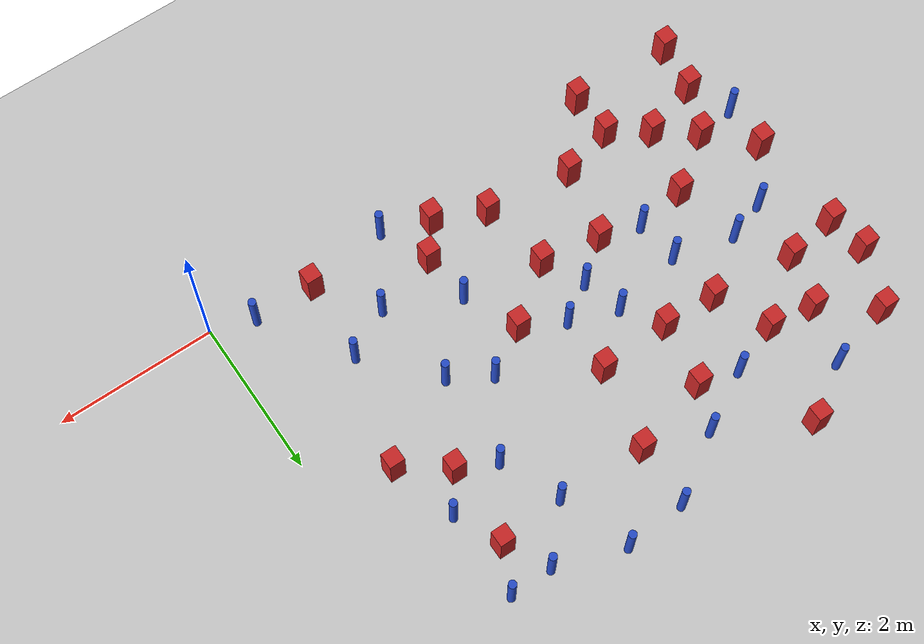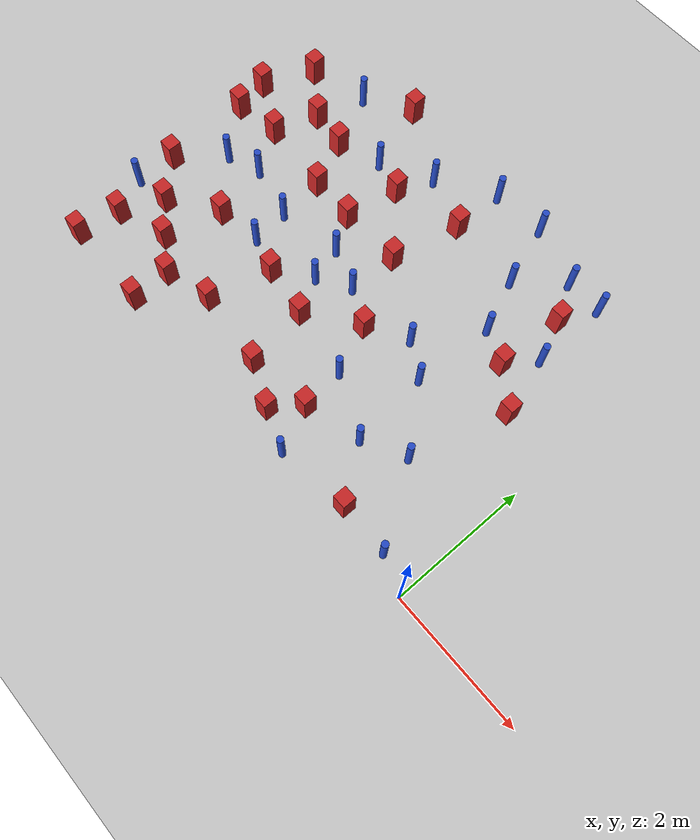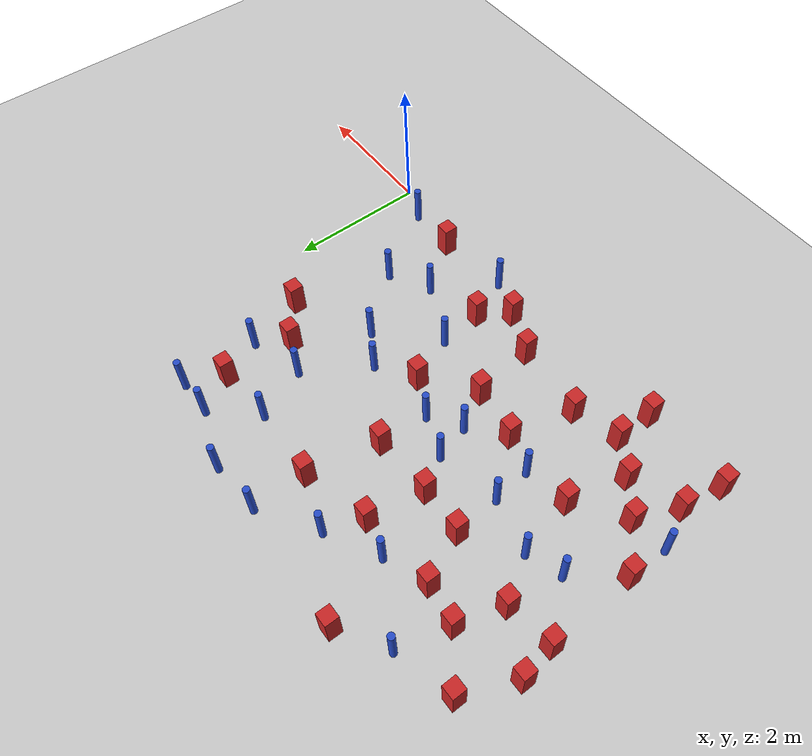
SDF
<sdf version="1.6">
 <world name="default">
  <model name="ground_plane">
   <static>1</static>
   <link name="link">
    <collision name="collision">
     <geometry><plane><normal>0 0 1</normal><size>100 100</size></plane></geometry>
     <surface><friction><ode><mu>100</mu><mu2>50</mu2></ode></friction></surface>
    </collision>
    <visual name="visual">
     <cast_shadows>0</cast_shadows>
     <geometry><plane><normal>0 0 1</normal><size>100 100</size></plane></geometry>
     <material>
      <ambient>1.0 1.0 1.0 1.0</ambient>
      <diffuse>0.8 0.8 0.8 1.0</diffuse>
      <specular>0.01 0.01 0.01 1.000000</specular>
     </material>
    </visual>
   </link>
  </model>
  <model name="pole_obstacle3">
   <static>true</static>
   <pose>-1.09027371918 4.62594508473 -9.47619616065e-06 5.49618799737e-07 2.36310414061e-07 -1.550905348e-07</pose>
   <link name="link">
    <pose>0 0 0.3 0 -0 0</pose>
    <inertial>
     <mass>1</mass>
     <inertia><ixx>0.145833</ixx><ixy>0</ixy><ixz>0</ixz><iyy>0.145833</iyy><iyz>0</iyz><izz>0.125</izz></inertia>
    </inertial>
    <collision name="collision">
     <geometry><cylinder><radius>0.05</radius><length>.6</length></cylinder></geometry>
    </collision>
    <visual name="visual">
     <geometry><cylinder><radius>0.05</radius><length>.6</length></cylinder></geometry>
     <material>
      <script><name>Gazebo/Blue</name><uri>file://media/materials/scripts/gazebo.material</uri></script>
     </material>
    </visual>
   </link>
  </model>
  <model name="square_post_obstacle6">
   <static>true</static>
   <pose>-6.67891821965 -0.000595044972764 -6.11067671241e-07 -5.50515727128e-06 -8.79689657224e-07 2.37013304536e-05</pose>
   <link name="link">
    <pose>0 0 0.25 0 -0 0</pose>
    <inertial>
     <mass>100</mass>
     <inertia>
      <ixx>0.166667</ixx>
      <ixy>0</ixy>
      <ixz>0</ixz>
      <iyy>0.166667</iyy>
      <iyz>0</iyz>
      <izz>0.166667</izz>
     </inertia>
    </inertial>
    <collision name="collision"><geometry><box><size>.2 .2 .5</size></box></geometry></collision>
    <visual name="visual">
     <geometry><box><size>.2 .2 .5</size></box></geometry>
     <material>
      <script><name>Gazebo/Red</name><uri>file://media/materials/scripts/gazebo.material</uri></script>
     </material>
    </visual>
   </link>
  </model>
  <model name="pole_obstacle4">
   <static>true</static>
   <pose>-6.32064139587 2.37381360721 -9.47619616065e-06 5.49618799738e-07 2.36310414051e-07 -1.55090534805e-07</pose>
   <link name="link">
    <pose>0 0 0.3 0 -0 0</pose>
    <inertial>
     <mass>1</mass>
     <inertia><ixx>0.145833</ixx><ixy>0</ixy><ixz>0</ixz><iyy>0.145833</iyy><iyz>0</iyz><izz>0.125</izz></inertia>
    </inertial>
    <collision name="collision">
     <geometry><cylinder><radius>0.05</radius><length>.6</length></cylinder></geometry>
    </collision>
    <visual name="visual">
     <geometry><cylinder><radius>0.05</radius><length>.6</length></cylinder></geometry>
     <material>
      <script><name>Gazebo/Blue</name><uri>file://media/materials/scripts/gazebo.material</uri></script>
     </material>
    </visual>
   </link>
  </model>
  <model name="square_post_obstacle18">
   <static>true</static>
   <pose>-5.42857553846 3.71930864042 -6.11067671241e-07 -5.50515727128e-06 -8.79689657224e-07 2.37013304536e-05</pose>
   <link name="link">
    <pose>0 0 0.25 0 -0 0</pose>
    <inertial>
     <mass>100</mass>
     <inertia>
      <ixx>0.166667</ixx>
      <ixy>0</ixy>
      <ixz>0</ixz>
      <iyy>0.166667</iyy>
      <iyz>0</iyz>
      <izz>0.166667</izz>
     </inertia>
    </inertial>
    <collision name="collision"><geometry><box><size>.2 .2 .5</size></box></geometry></collision>
    <visual name="visual">
     <geometry><box><size>.2 .2 .5</size></box></geometry>
     <material>
      <script><name>Gazebo/Red</name><uri>file://media/materials/scripts/gazebo.material</uri></script>
     </material>
    </visual>
   </link>
  </model>
  <model name="pole_obstacle10">
   <static>true</static>
   <pose>-3.52547507397 2.32096026912 -9.47619616065e-06 5.49618799737e-07 2.36310414067e-07 -1.55090534797e-07</pose>
   <link name="link">
    <pose>0 0 0.3 0 -0 0</pose>
    <inertial>
     <mass>1</mass>
     <inertia><ixx>0.145833</ixx><ixy>0</ixy><ixz>0</ixz><iyy>0.145833</iyy><iyz>0</iyz><izz>0.125</izz></inertia>
    </inertial>
    <collision name="collision">
     <geometry><cylinder><radius>0.05</radius><length>.6</length></cylinder></geometry>
    </collision>
    <visual name="visual">
     <geometry><cylinder><radius>0.05</radius><length>.6</length></cylinder></geometry>
     <material>
      <script><name>Gazebo/Blue</name><uri>file://media/materials/scripts/gazebo.material</uri></script>
     </material>
    </visual>
   </link>
  </model>
  <model name="pole_obstacle11">
   <static>true</static>
   <pose>-5.04784760389 2.35746795812 -9.47619616065e-06 5.49618799738e-07 2.36310414051e-07 -1.55090534805e-07</pose>
   <link name="link">
    <pose>0 0 0.3 0 -0 0</pose>
    <inertial>
     <mass>1</mass>
     <inertia><ixx>0.145833</ixx><ixy>0</ixy><ixz>0</ixz><iyy>0.145833</iyy><iyz>0</iyz><izz>0.125</izz></inertia>
    </inertial>
    <collision name="collision">
     <geometry><cylinder><radius>0.05</radius><length>.6</length></cylinder></geometry>
    </collision>
    <visual name="visual">
     <geometry><cylinder><radius>0.05</radius><length>.6</length></cylinder></geometry>
     <material>
      <script><name>Gazebo/Blue</name><uri>file://media/materials/scripts/gazebo.material</uri></script>
     </material>
    </visual>
   </link>
  </model>
  <model name="square_post_obstacle21">
   <static>true</static>
   <pose>-5.62746742056 1.71022988912 -6.11067671241e-07 -5.50515727128e-06 -8.79689657224e-07 2.37013304536e-05</pose>
   <link name="link">
    <pose>0 0 0.25 0 -0 0</pose>
    <inertial>
     <mass>100</mass>
     <inertia>
      <ixx>0.166667</ixx>
      <ixy>0</ixy>
      <ixz>0</ixz>
      <iyy>0.166667</iyy>
      <iyz>0</iyz>
      <izz>0.166667</izz>
     </inertia>
    </inertial>
    <collision name="collision"><geometry><box><size>.2 .2 .5</size></box></geometry></collision>
    <visual name="visual">
     <geometry><box><size>.2 .2 .5</size></box></geometry>
     <material>
      <script><name>Gazebo/Red</name><uri>file://media/materials/scripts/gazebo.material</uri></script>
     </material>
    </visual>
   </link>
  </model>
  <model name="square_post_obstacle25">
   <static>true</static>
   <pose>-5.11166240738 3.04003141146 -6.11067671241e-07 -5.50515727128e-06 -8.79689657224e-07 2.37013304536e-05</pose>
   <link name="link">
    <pose>0 0 0.25 0 -0 0</pose>
    <inertial>
     <mass>100</mass>
     <inertia>
      <ixx>0.166667</ixx>
      <ixy>0</ixy>
      <ixz>0</ixz>
      <iyy>0.166667</iyy>
      <iyz>0</iyz>
      <izz>0.166667</izz>
     </inertia>
    </inertial>
    <collision name="collision"><geometry><box><size>.2 .2 .5</size></box></geometry></collision>
    <visual name="visual">
     <geometry><box><size>.2 .2 .5</size></box></geometry>
     <material>
      <script><name>Gazebo/Red</name><uri>file://media/materials/scripts/gazebo.material</uri></script>
     </material>
    </visual>
   </link>
  </model>
  <model name="square_post_obstacle28">
   <static>true</static>
   <pose>-4.68213746583 0.732683075782 -6.11067671241e-07 -5.50515727128e-06 -8.79689657224e-07 2.37013304536e-05</pose>
   <link name="link">
    <pose>0 0 0.25 0 -0 0</pose>
    <inertial>
     <mass>100</mass>
     <inertia>
      <ixx>0.166667</ixx>
      <ixy>0</ixy>
      <ixz>0</ixz>
      <iyy>0.166667</iyy>
      <iyz>0</iyz>
      <izz>0.166667</izz>
     </inertia>
    </inertial>
    <collision name="collision"><geometry><box><size>.2 .2 .5</size></box></geometry></collision>
    <visual name="visual">
     <geometry><box><size>.2 .2 .5</size></box></geometry>
     <material>
      <script><name>Gazebo/Red</name><uri>file://media/materials/scripts/gazebo.material</uri></script>
     </material>
    </visual>
   </link>
  </model>
  <model name="pole_obstacle40">
   <static>true</static>
   <pose>-1.86852139794 3.28823989631 -9.47619616065e-06 5.49618799737e-07 2.36310414062e-07 -1.55090534798e-07</pose>
   <link name="link">
    <pose>0 0 0.3 0 -0 0</pose>
    <inertial>
     <mass>1</mass>
     <inertia><ixx>0.145833</ixx><ixy>0</ixy><ixz>0</ixz><iyy>0.145833</iyy><iyz>0</iyz><izz>0.125</izz></inertia>
    </inertial>
    <collision name="collision">
     <geometry><cylinder><radius>0.05</radius><length>.6</length></cylinder></geometry>
    </collision>
    <visual name="visual">
     <geometry><cylinder><radius>0.05</radius><length>.6</length></cylinder></geometry>
     <material>
      <script><name>Gazebo/Blue</name><uri>file://media/materials/scripts/gazebo.material</uri></script>
     </material>
    </visual>
   </link>
  </model>
  <model name="pole_obstacle41">
   <static>true</static>
   <pose>-1.07912941246 3.50897116543 -9.47619616065e-06 5.49618799737e-07 2.36310414062e-07 -1.55090534798e-07</pose>
   <link name="link">
    <pose>0 0 0.3 0 -0 0</pose>
    <inertial>
     <mass>1</mass>
     <inertia><ixx>0.145833</ixx><ixy>0</ixy><ixz>0</ixz><iyy>0.145833</iyy><iyz>0</iyz><izz>0.125</izz></inertia>
    </inertial>
    <collision name="collision">
     <geometry><cylinder><radius>0.05</radius><length>.6</length></cylinder></geometry>
    </collision>
    <visual name="visual">
     <geometry><cylinder><radius>0.05</radius><length>.6</length></cylinder></geometry>
     <material>
      <script><name>Gazebo/Blue</name><uri>file://media/materials/scripts/gazebo.material</uri></script>
     </material>
    </visual>
   </link>
  </model>
  <model name="pole_obstacle44">
   <static>true</static>
   <pose>-0.524663926777 0.20871820857 -9.47619616065e-06 5.49618799737e-07 2.36310414058e-07 -1.55090534801e-07</pose>
   <link name="link">
    <pose>0 0 0.3 0 -0 0</pose>
    <inertial>
     <mass>1</mass>
     <inertia><ixx>0.145833</ixx><ixy>0</ixy><ixz>0</ixz><iyy>0.145833</iyy><iyz>0</iyz><izz>0.125</izz></inertia>
    </inertial>
    <collision name="collision">
     <geometry><cylinder><radius>0.05</radius><length>.6</length></cylinder></geometry>
    </collision>
    <visual name="visual">
     <geometry><cylinder><radius>0.05</radius><length>.6</length></cylinder></geometry>
     <material>
      <script><name>Gazebo/Blue</name><uri>file://media/materials/scripts/gazebo.material</uri></script>
     </material>
    </visual>
   </link>
  </model>
  <model name="square_post_obstacle43">
   <static>true</static>
   <pose>-6.57981847341 0.619666430036 -6.11067671241e-07 -5.50515727128e-06 -8.79689657224e-07 2.37013304536e-05</pose>
   <link name="link">
    <pose>0 0 0.25 0 -0 0</pose>
    <inertial>
     <mass>100</mass>
     <inertia>
      <ixx>0.166667</ixx>
      <ixy>0</ixy>
      <ixz>0</ixz>
      <iyy>0.166667</iyy>
      <iyz>0</iyz>
      <izz>0.166667</izz>
     </inertia>
    </inertial>
    <collision name="collision"><geometry><box><size>.2 .2 .5</size></box></geometry></collision>
    <visual name="visual">
     <geometry><box><size>.2 .2 .5</size></box></geometry>
     <material>
      <script><name>Gazebo/Red</name><uri>file://media/materials/scripts/gazebo.material</uri></script>
     </material>
    </visual>
   </link>
  </model>
  <model name="pole_obstacle47">
   <static>true</static>
   <pose>-1.22346415506 1.26940998177 -9.47619616065e-06 5.49618799737e-07 2.36310414065e-07 -1.55090534798e-07</pose>
   <link name="link">
    <pose>0 0 0.3 0 -0 0</pose>
    <inertial>
     <mass>1</mass>
     <inertia><ixx>0.145833</ixx><ixy>0</ixy><ixz>0</ixz><iyy>0.145833</iyy><iyz>0</iyz><izz>0.125</izz></inertia>
    </inertial>
    <collision name="collision">
     <geometry><cylinder><radius>0.05</radius><length>.6</length></cylinder></geometry>
    </collision>
    <visual name="visual">
     <geometry><cylinder><radius>0.05</radius><length>.6</length></cylinder></geometry>
     <material>
      <script><name>Gazebo/Blue</name><uri>file://media/materials/scripts/gazebo.material</uri></script>
     </material>
    </visual>
   </link>
  </model>
  <model name="pole_obstacle50">
   <static>true</static>
   <pose>-4.79869854811 3.94933160019 -9.47619616065e-06 5.49618799738e-07 2.36310414051e-07 -1.55090534805e-07</pose>
   <link name="link">
    <pose>0 0 0.3 0 -0 0</pose>
    <inertial>
     <mass>1</mass>
     <inertia><ixx>0.145833</ixx><ixy>0</ixy><ixz>0</ixz><iyy>0.145833</iyy><iyz>0</iyz><izz>0.125</izz></inertia>
    </inertial>
    <collision name="collision">
     <geometry><cylinder><radius>0.05</radius><length>.6</length></cylinder></geometry>
    </collision>
    <visual name="visual">
     <geometry><cylinder><radius>0.05</radius><length>.6</length></cylinder></geometry>
     <material>
      <script><name>Gazebo/Blue</name><uri>file://media/materials/scripts/gazebo.material</uri></script>
     </material>
    </visual>
   </link>
  </model>
  <model name="square_post_obstacle55">
   <static>true</static>
   <pose>-3.70432642436 1.53110793912 -6.11067671241e-07 -5.50515727128e-06 -8.79689657224e-07 2.37013304536e-05</pose>
   <link name="link">
    <pose>0 0 0.25 0 -0 0</pose>
    <inertial>
     <mass>100</mass>
     <inertia>
      <ixx>0.166667</ixx>
      <ixy>0</ixy>
      <ixz>0</ixz>
      <iyy>0.166667</iyy>
      <iyz>0</iyz>
      <izz>0.166667</izz>
     </inertia>
    </inertial>
    <collision name="collision"><geometry><box><size>.2 .2 .5</size></box></geometry></collision>
    <visual name="visual">
     <geometry><box><size>.2 .2 .5</size></box></geometry>
     <material>
      <script><name>Gazebo/Red</name><uri>file://media/materials/scripts/gazebo.material</uri></script>
     </material>
    </visual>
   </link>
  </model>
  <model name="square_post_obstacle62">
   <static>true</static>
   <pose>-0.839575821073 2.66002455483 -6.11067671241e-07 -5.50515727128e-06 -8.79689657224e-07 2.37013304536e-05</pose>
   <link name="link">
    <pose>0 0 0.25 0 -0 0</pose>
    <inertial>
     <mass>100</mass>
     <inertia>
      <ixx>0.166667</ixx>
      <ixy>0</ixy>
      <ixz>0</ixz>
      <iyy>0.166667</iyy>
      <iyz>0</iyz>
      <izz>0.166667</izz>
     </inertia>
    </inertial>
    <collision name="collision"><geometry><box><size>.2 .2 .5</size></box></geometry></collision>
    <visual name="visual">
     <geometry><box><size>.2 .2 .5</size></box></geometry>
     <material>
      <script><name>Gazebo/Red</name><uri>file://media/materials/scripts/gazebo.material</uri></script>
     </material>
    </visual>
   </link>
  </model>
  <model name="pole_obstacle62">
   <static>true</static>
   <pose>-5.80467562046 4.52044482855 -9.47619616065e-06 5.49618799737e-07 2.36310414037e-07 -1.55090534814e-07</pose>
   <link name="link">
    <pose>0 0 0.3 0 -0 0</pose>
    <inertial>
     <mass>1</mass>
     <inertia><ixx>0.145833</ixx><ixy>0</ixy><ixz>0</ixz><iyy>0.145833</iyy><iyz>0</iyz><izz>0.125</izz></inertia>
    </inertial>
    <collision name="collision">
     <geometry><cylinder><radius>0.05</radius><length>.6</length></cylinder></geometry>
    </collision>
    <visual name="visual">
     <geometry><cylinder><radius>0.05</radius><length>.6</length></cylinder></geometry>
     <material>
      <script><name>Gazebo/Blue</name><uri>file://media/materials/scripts/gazebo.material</uri></script>
     </material>
    </visual>
   </link>
  </model>
  <model name="square_post_obstacle74">
   <static>true</static>
   <pose>-5.14106249143 4.93527133353 -6.11067671241e-07 -5.50515727128e-06 -8.79689657224e-07 2.37013304536e-05</pose>
   <link name="link">
    <pose>0 0 0.25 0 -0 0</pose>
    <inertial>
     <mass>100</mass>
     <inertia>
      <ixx>0.166667</ixx>
      <ixy>0</ixy>
      <ixz>0</ixz>
      <iyy>0.166667</iyy>
      <iyz>0</iyz>
      <izz>0.166667</izz>
     </inertia>
    </inertial>
    <collision name="collision"><geometry><box><size>.2 .2 .5</size></box></geometry></collision>
    <visual name="visual">
     <geometry><box><size>.2 .2 .5</size></box></geometry>
     <material>
      <script><name>Gazebo/Red</name><uri>file://media/materials/scripts/gazebo.material</uri></script>
     </material>
    </visual>
   </link>
  </model>
  <model name="pole_obstacle76">
   <static>true</static>
   <pose>-1.93435221396 2.09917574216 -9.47619616065e-06 5.49618799737e-07 2.36310414062e-07 -1.55090534798e-07</pose>
   <link name="link">
    <pose>0 0 0.3 0 -0 0</pose>
    <inertial>
     <mass>1</mass>
     <inertia><ixx>0.145833</ixx><ixy>0</ixy><ixz>0</ixz><iyy>0.145833</iyy><iyz>0</iyz><izz>0.125</izz></inertia>
    </inertial>
    <collision name="collision">
     <geometry><cylinder><radius>0.05</radius><length>.6</length></cylinder></geometry>
    </collision>
    <visual name="visual">
     <geometry><cylinder><radius>0.05</radius><length>.6</length></cylinder></geometry>
     <material>
      <script><name>Gazebo/Blue</name><uri>file://media/materials/scripts/gazebo.material</uri></script>
     </material>
    </visual>
   </link>
  </model>
  <model name="pole_obstacle80">
   <static>true</static>
   <pose>-1.63093347125 4.62417262649 -9.47619616065e-06 5.49618799737e-07 2.36310414061e-07 -1.550905348e-07</pose>
   <link name="link">
    <pose>0 0 0.3 0 -0 0</pose>
    <inertial>
     <mass>1</mass>
     <inertia><ixx>0.145833</ixx><ixy>0</ixy><ixz>0</ixz><iyy>0.145833</iyy><iyz>0</iyz><izz>0.125</izz></inertia>
    </inertial>
    <collision name="collision">
     <geometry><cylinder><radius>0.05</radius><length>.6</length></cylinder></geometry>
    </collision>
    <visual name="visual">
     <geometry><cylinder><radius>0.05</radius><length>.6</length></cylinder></geometry>
     <material>
      <script><name>Gazebo/Blue</name><uri>file://media/materials/scripts/gazebo.material</uri></script>
     </material>
    </visual>
   </link>
  </model>
  <model name="square_post_obstacle80">
   <static>true</static>
   <pose>-2.62929245753 0.731124927157 -6.11067671241e-07 -5.50515727128e-06 -8.79689657224e-07 2.37013304536e-05</pose>
   <link name="link">
    <pose>0 0 0.25 0 -0 0</pose>
    <inertial>
     <mass>100</mass>
     <inertia>
      <ixx>0.166667</ixx>
      <ixy>0</ixy>
      <ixz>0</ixz>
      <iyy>0.166667</iyy>
      <iyz>0</iyz>
      <izz>0.166667</izz>
     </inertia>
    </inertial>
    <collision name="collision"><geometry><box><size>.2 .2 .5</size></box></geometry></collision>
    <visual name="visual">
     <geometry><box><size>.2 .2 .5</size></box></geometry>
     <material>
      <script><name>Gazebo/Red</name><uri>file://media/materials/scripts/gazebo.material</uri></script>
     </material>
    </visual>
   </link>
  </model>
  <model name="pole_obstacle86">
   <static>true</static>
   <pose>-3.97774521021 2.03599947794 -9.4761961606e-06 5.49618799729e-07 2.36310414e-07 -1.55090534825e-07</pose>
   <link name="link">
    <pose>0 0 0.3 0 -0 0</pose>
    <inertial>
     <mass>1</mass>
     <inertia><ixx>0.145833</ixx><ixy>0</ixy><ixz>0</ixz><iyy>0.145833</iyy><iyz>0</iyz><izz>0.125</izz></inertia>
    </inertial>
    <collision name="collision">
     <geometry><cylinder><radius>0.05</radius><length>.6</length></cylinder></geometry>
    </collision>
    <visual name="visual">
     <geometry><cylinder><radius>0.05</radius><length>.6</length></cylinder></geometry>
     <material>
      <script><name>Gazebo/Blue</name><uri>file://media/materials/scripts/gazebo.material</uri></script>
     </material>
    </visual>
   </link>
  </model>
  <model name="pole_obstacle89">
   <static>true</static>
   <pose>-2.35206346139 0.0932066259311 -9.4761961606e-06 5.49618799729e-07 2.36310414008e-07 -1.55090534821e-07</pose>
   <link name="link">
    <pose>0 0 0.3 0 -0 0</pose>
    <inertial>
     <mass>1</mass>
     <inertia><ixx>0.145833</ixx><ixy>0</ixy><ixz>0</ixz><iyy>0.145833</iyy><iyz>0</iyz><izz>0.125</izz></inertia>
    </inertial>
    <collision name="collision">
     <geometry><cylinder><radius>0.05</radius><length>.6</length></cylinder></geometry>
    </collision>
    <visual name="visual">
     <geometry><cylinder><radius>0.05</radius><length>.6</length></cylinder></geometry>
     <material>
      <script><name>Gazebo/Blue</name><uri>file://media/materials/scripts/gazebo.material</uri></script>
     </material>
    </visual>
   </link>
  </model>
  <model name="square_post_obstacle88">
   <static>true</static>
   <pose>-1.29492614239 0.238106709817 -6.11067671241e-07 -5.50515727128e-06 -8.79689657224e-07 2.37013304536e-05</pose>
   <link name="link">
    <pose>0 0 0.25 0 -0 0</pose>
    <inertial>
     <mass>100</mass>
     <inertia>
      <ixx>0.166667</ixx>
      <ixy>0</ixy>
      <ixz>0</ixz>
      <iyy>0.166667</iyy>
      <iyz>0</iyz>
      <izz>0.166667</izz>
     </inertia>
    </inertial>
    <collision name="collision"><geometry><box><size>.2 .2 .5</size></box></geometry></collision>
    <visual name="visual">
     <geometry><box><size>.2 .2 .5</size></box></geometry>
     <material>
      <script><name>Gazebo/Red</name><uri>file://media/materials/scripts/gazebo.material</uri></script>
     </material>
    </visual>
   </link>
  </model>
  <model name="square_post_obstacle90">
   <static>true</static>
   <pose>-2.99357746055 2.05786051305 -6.11067671241e-07 -5.50515727128e-06 -8.79689657224e-07 2.37013304536e-05</pose>
   <link name="link">
    <pose>0 0 0.25 0 -0 0</pose>
    <inertial>
     <mass>100</mass>
     <inertia>
      <ixx>0.166667</ixx>
      <ixy>0</ixy>
      <ixz>0</ixz>
      <iyy>0.166667</iyy>
      <iyz>0</iyz>
      <izz>0.166667</izz>
     </inertia>
    </inertial>
    <collision name="collision"><geometry><box><size>.2 .2 .5</size></box></geometry></collision>
    <visual name="visual">
     <geometry><box><size>.2 .2 .5</size></box></geometry>
     <material>
      <script><name>Gazebo/Red</name><uri>file://media/materials/scripts/gazebo.material</uri></script>
     </material>
    </visual>
   </link>
  </model>
  <model name="square_post_obstacle102">
   <static>true</static>
   <pose>-1.39324743137 3.07877531347 -6.11067671241e-07 -5.50515727128e-06 -8.79689657224e-07 2.37013304536e-05</pose>
   <link name="link">
    <pose>0 0 0.25 0 -0 0</pose>
    <inertial>
     <mass>100</mass>
     <inertia>
      <ixx>0.166667</ixx>
      <ixy>0</ixy>
      <ixz>0</ixz>
      <iyy>0.166667</iyy>
      <iyz>0</iyz>
      <izz>0.166667</izz>
     </inertia>
    </inertial>
    <collision name="collision"><geometry><box><size>.2 .2 .5</size></box></geometry></collision>
    <visual name="visual">
     <geometry><box><size>.2 .2 .5</size></box></geometry>
     <material>
      <script><name>Gazebo/Red</name><uri>file://media/materials/scripts/gazebo.material</uri></script>
     </material>
    </visual>
   </link>
  </model>
  <model name="pole_obstacle117">
   <static>true</static>
   <pose>-2.69382671403 1.364000166 -9.47619616065e-06 5.49618799737e-07 2.36310414072e-07 -1.55090534793e-07</pose>
   <link name="link">
    <pose>0 0 0.3 0 -0 0</pose>
    <inertial>
     <mass>1</mass>
     <inertia><ixx>0.145833</ixx><ixy>0</ixy><ixz>0</ixz><iyy>0.145833</iyy><iyz>0</iyz><izz>0.125</izz></inertia>
    </inertial>
    <collision name="collision">
     <geometry><cylinder><radius>0.05</radius><length>.6</length></cylinder></geometry>
    </collision>
    <visual name="visual">
     <geometry><cylinder><radius>0.05</radius><length>.6</length></cylinder></geometry>
     <material>
      <script><name>Gazebo/Blue</name><uri>file://media/materials/scripts/gazebo.material</uri></script>
     </material>
    </visual>
   </link>
  </model>
  <model name="pole_obstacle126">
   <static>true</static>
   <pose>-2.18193208757 4.03178389054 -9.47619616065e-06 5.49618799737e-07 2.36310414061e-07 -1.55090534801e-07</pose>
   <link name="link">
    <pose>0 0 0.3 0 -0 0</pose>
    <inertial>
     <mass>1</mass>
     <inertia><ixx>0.145833</ixx><ixy>0</ixy><ixz>0</ixz><iyy>0.145833</iyy><iyz>0</iyz><izz>0.125</izz></inertia>
    </inertial>
    <collision name="collision">
     <geometry><cylinder><radius>0.05</radius><length>.6</length></cylinder></geometry>
    </collision>
    <visual name="visual">
     <geometry><cylinder><radius>0.05</radius><length>.6</length></cylinder></geometry>
     <material>
      <script><name>Gazebo/Blue</name><uri>file://media/materials/scripts/gazebo.material</uri></script>
     </material>
    </visual>
   </link>
  </model>
  <model name="pole_obstacle133">
   <static>true</static>
   <pose>-4.07180559232 4.34716455504 -9.47619616065e-06 5.49618799737e-07 2.36310414037e-07 -1.55090534814e-07</pose>
   <link name="link">
    <pose>0 0 0.3 0 -0 0</pose>
    <inertial>
     <mass>1</mass>
     <inertia><ixx>0.145833</ixx><ixy>0</ixy><ixz>0</ixz><iyy>0.145833</iyy><iyz>0</iyz><izz>0.125</izz></inertia>
    </inertial>
    <collision name="collision">
     <geometry><cylinder><radius>0.05</radius><length>.6</length></cylinder></geometry>
    </collision>
    <visual name="visual">
     <geometry><cylinder><radius>0.05</radius><length>.6</length></cylinder></geometry>
     <material>
      <script><name>Gazebo/Blue</name><uri>file://media/materials/scripts/gazebo.material</uri></script>
     </material>
    </visual>
   </link>
  </model>
  <model name="square_post_obstacle120">
   <static>true</static>
   <pose>-3.5658986812 0.609903932133 -6.11067671241e-07 -5.50515727128e-06 -8.79689657224e-07 2.37013304536e-05</pose>
   <link name="link">
    <pose>0 0 0.25 0 -0 0</pose>
    <inertial>
     <mass>100</mass>
     <inertia>
      <ixx>0.166667</ixx>
      <ixy>0</ixy>
      <ixz>0</ixz>
      <iyy>0.166667</iyy>
      <iyz>0</iyz>
      <izz>0.166667</izz>
     </inertia>
    </inertial>
    <collision name="collision"><geometry><box><size>.2 .2 .5</size></box></geometry></collision>
    <visual name="visual">
     <geometry><box><size>.2 .2 .5</size></box></geometry>
     <material>
      <script><name>Gazebo/Red</name><uri>file://media/materials/scripts/gazebo.material</uri></script>
     </material>
    </visual>
   </link>
  </model>
  <model name="square_post_obstacle122">
   <static>true</static>
   <pose>-6.96756528324 3.55130222092 -6.11067671241e-07 -5.50515727128e-06 -8.79689657224e-07 2.37013304536e-05</pose>
   <link name="link">
    <pose>0 0 0.25 0 -0 0</pose>
    <inertial>
     <mass>100</mass>
     <inertia>
      <ixx>0.166667</ixx>
      <ixy>0</ixy>
      <ixz>0</ixz>
      <iyy>0.166667</iyy>
      <iyz>0</iyz>
      <izz>0.166667</izz>
     </inertia>
    </inertial>
    <collision name="collision"><geometry><box><size>.2 .2 .5</size></box></geometry></collision>
    <visual name="visual">
     <geometry><box><size>.2 .2 .5</size></box></geometry>
     <material>
      <script><name>Gazebo/Red</name><uri>file://media/materials/scripts/gazebo.material</uri></script>
     </material>
    </visual>
   </link>
  </model>
  <model name="square_post_obstacle123">
   <static>true</static>
   <pose>-2.93697818891 0.326201737507 -6.11067671241e-07 -5.50515727128e-06 -8.79689657224e-07 2.37013304536e-05</pose>
   <link name="link">
    <pose>0 0 0.25 0 -0 0</pose>
    <inertial>
     <mass>100</mass>
     <inertia>
      <ixx>0.166667</ixx>
      <ixy>0</ixy>
      <ixz>0</ixz>
      <iyy>0.166667</iyy>
      <iyz>0</iyz>
      <izz>0.166667</izz>
     </inertia>
    </inertial>
    <collision name="collision"><geometry><box><size>.2 .2 .5</size></box></geometry></collision>
    <visual name="visual">
     <geometry><box><size>.2 .2 .5</size></box></geometry>
     <material>
      <script><name>Gazebo/Red</name><uri>file://media/materials/scripts/gazebo.material</uri></script>
     </material>
    </visual>
   </link>
  </model>
  <model name="square_post_obstacle129">
   <static>true</static>
   <pose>-6.87725104283 3.04885404646 -6.11067671241e-07 -5.50515727128e-06 -8.79689657224e-07 2.37013304536e-05</pose>
   <link name="link">
    <pose>0 0 0.25 0 -0 0</pose>
    <inertial>
     <mass>100</mass>
     <inertia>
      <ixx>0.166667</ixx>
      <ixy>0</ixy>
      <ixz>0</ixz>
      <iyy>0.166667</iyy>
      <iyz>0</iyz>
      <izz>0.166667</izz>
     </inertia>
    </inertial>
    <collision name="collision"><geometry><box><size>.2 .2 .5</size></box></geometry></collision>
    <visual name="visual">
     <geometry><box><size>.2 .2 .5</size></box></geometry>
     <material>
      <script><name>Gazebo/Red</name><uri>file://media/materials/scripts/gazebo.material</uri></script>
     </material>
    </visual>
   </link>
  </model>
  <model name="pole_obstacle143">
   <static>true</static>
   <pose>-1.81268059438 0.950854385126 -9.47619616065e-06 5.49618799737e-07 2.3631041407e-07 -1.55090534794e-07</pose>
   <link name="link">
    <pose>0 0 0.3 0 -0 0</pose>
    <inertial>
     <mass>1</mass>
     <inertia><ixx>0.145833</ixx><ixy>0</ixy><ixz>0</ixz><iyy>0.145833</iyy><iyz>0</iyz><izz>0.125</izz></inertia>
    </inertial>
    <collision name="collision">
     <geometry><cylinder><radius>0.05</radius><length>.6</length></cylinder></geometry>
    </collision>
    <visual name="visual">
     <geometry><cylinder><radius>0.05</radius><length>.6</length></cylinder></geometry>
     <material>
      <script><name>Gazebo/Blue</name><uri>file://media/materials/scripts/gazebo.material</uri></script>
     </material>
    </visual>
   </link>
  </model>
  <model name="pole_obstacle145">
   <static>true</static>
   <pose>-6.8397695741 1.15119799747 -9.47619616065e-06 5.49618799738e-07 2.36310414071e-07 -1.55090534796e-07</pose>
   <link name="link">
    <pose>0 0 0.3 0 -0 0</pose>
    <inertial>
     <mass>1</mass>
     <inertia><ixx>0.145833</ixx><ixy>0</ixy><ixz>0</ixz><iyy>0.145833</iyy><iyz>0</iyz><izz>0.125</izz></inertia>
    </inertial>
    <collision name="collision">
     <geometry><cylinder><radius>0.05</radius><length>.6</length></cylinder></geometry>
    </collision>
    <visual name="visual">
     <geometry><cylinder><radius>0.05</radius><length>.6</length></cylinder></geometry>
     <material>
      <script><name>Gazebo/Blue</name><uri>file://media/materials/scripts/gazebo.material</uri></script>
     </material>
    </visual>
   </link>
  </model>
  <model name="square_post_obstacle136">
   <static>true</static>
   <pose>-4.29061410966 3.81904239725 -6.11067671241e-07 -5.50515727128e-06 -8.79689657224e-07 2.37013304536e-05</pose>
   <link name="link">
    <pose>0 0 0.25 0 -0 0</pose>
    <inertial>
     <mass>100</mass>
     <inertia>
      <ixx>0.166667</ixx>
      <ixy>0</ixy>
      <ixz>0</ixz>
      <iyy>0.166667</iyy>
      <iyz>0</iyz>
      <izz>0.166667</izz>
     </inertia>
    </inertial>
    <collision name="collision"><geometry><box><size>.2 .2 .5</size></box></geometry></collision>
    <visual name="visual">
     <geometry><box><size>.2 .2 .5</size></box></geometry>
     <material>
      <script><name>Gazebo/Red</name><uri>file://media/materials/scripts/gazebo.material</uri></script>
     </material>
    </visual>
   </link>
  </model>
  <model name="pole_obstacle150">
   <static>true</static>
   <pose>-4.98201033399 1.80569388636 -9.47619616065e-06 5.49618799738e-07 2.36310414071e-07 -1.55090534796e-07</pose>
   <link name="link">
    <pose>0 0 0.3 0 -0 0</pose>
    <inertial>
     <mass>1</mass>
     <inertia><ixx>0.145833</ixx><ixy>0</ixy><ixz>0</ixz><iyy>0.145833</iyy><iyz>0</iyz><izz>0.125</izz></inertia>
    </inertial>
    <collision name="collision">
     <geometry><cylinder><radius>0.05</radius><length>.6</length></cylinder></geometry>
    </collision>
    <visual name="visual">
     <geometry><cylinder><radius>0.05</radius><length>.6</length></cylinder></geometry>
     <material>
      <script><name>Gazebo/Blue</name><uri>file://media/materials/scripts/gazebo.material</uri></script>
     </material>
    </visual>
   </link>
  </model>
  <model name="square_post_obstacle145">
   <static>true</static>
   <pose>-5.84205871149 0.860904455369 -6.11067671241e-07 -5.50515727128e-06 -8.79689657224e-07 2.37013304536e-05</pose>
   <link name="link">
    <pose>0 0 0.25 0 -0 0</pose>
    <inertial>
     <mass>100</mass>
     <inertia>
      <ixx>0.166667</ixx>
      <ixy>0</ixy>
      <ixz>0</ixz>
      <iyy>0.166667</iyy>
      <iyz>0</iyz>
      <izz>0.166667</izz>
     </inertia>
    </inertial>
    <collision name="collision"><geometry><box><size>.2 .2 .5</size></box></geometry></collision>
    <visual name="visual">
     <geometry><box><size>.2 .2 .5</size></box></geometry>
     <material>
      <script><name>Gazebo/Red</name><uri>file://media/materials/scripts/gazebo.material</uri></script>
     </material>
    </visual>
   </link>
  </model>
  <model name="square_post_obstacle148">
   <static>true</static>
   <pose>-5.36053465824 0.544623348385 -6.11067671241e-07 -5.50515727128e-06 -8.79689657224e-07 2.37013304536e-05</pose>
   <link name="link">
    <pose>0 0 0.25 0 -0 0</pose>
    <inertial>
     <mass>100</mass>
     <inertia>
      <ixx>0.166667</ixx>
      <ixy>0</ixy>
      <ixz>0</ixz>
      <iyy>0.166667</iyy>
      <iyz>0</iyz>
      <izz>0.166667</izz>
     </inertia>
    </inertial>
    <collision name="collision"><geometry><box><size>.2 .2 .5</size></box></geometry></collision>
    <visual name="visual">
     <geometry><box><size>.2 .2 .5</size></box></geometry>
     <material>
      <script><name>Gazebo/Red</name><uri>file://media/materials/scripts/gazebo.material</uri></script>
     </material>
    </visual>
   </link>
  </model>
  <model name="pole_obstacle158">
   <static>true</static>
   <pose>-4.12188103455 2.53929567445 -9.47619616065e-06 5.49618799738e-07 2.36310414051e-07 -1.55090534805e-07</pose>
   <link name="link">
    <pose>0 0 0.3 0 -0 0</pose>
    <inertial>
     <mass>1</mass>
     <inertia><ixx>0.145833</ixx><ixy>0</ixy><ixz>0</ixz><iyy>0.145833</iyy><iyz>0</iyz><izz>0.125</izz></inertia>
    </inertial>
    <collision name="collision">
     <geometry><cylinder><radius>0.05</radius><length>.6</length></cylinder></geometry>
    </collision>
    <visual name="visual">
     <geometry><cylinder><radius>0.05</radius><length>.6</length></cylinder></geometry>
     <material>
      <script><name>Gazebo/Blue</name><uri>file://media/materials/scripts/gazebo.material</uri></script>
     </material>
    </visual>
   </link>
  </model>
  <model name="pole_obstacle161">
   <static>true</static>
   <pose>-2.42706628035 2.39652000571 -9.47619616065e-06 5.49618799737e-07 2.36310414051e-07 -1.55090534807e-07</pose>
   <link name="link">
    <pose>0 0 0.3 0 -0 0</pose>
    <inertial>
     <mass>1</mass>
     <inertia><ixx>0.145833</ixx><ixy>0</ixy><ixz>0</ixz><iyy>0.145833</iyy><iyz>0</iyz><izz>0.125</izz></inertia>
    </inertial>
    <collision name="collision">
     <geometry><cylinder><radius>0.05</radius><length>.6</length></cylinder></geometry>
    </collision>
    <visual name="visual">
     <geometry><cylinder><radius>0.05</radius><length>.6</length></cylinder></geometry>
     <material>
      <script><name>Gazebo/Blue</name><uri>file://media/materials/scripts/gazebo.material</uri></script>
     </material>
    </visual>
   </link>
  </model>
  <model name="pole_obstacle162">
   <static>true</static>
   <pose>-3.27326849207 4.8596833282 -9.4761961606e-06 5.49618799729e-07 2.36310414006e-07 -1.55090534822e-07</pose>
   <link name="link">
    <pose>0 0 0.3 0 -0 0</pose>
    <inertial>
     <mass>1</mass>
     <inertia><ixx>0.145833</ixx><ixy>0</ixy><ixz>0</ixz><iyy>0.145833</iyy><iyz>0</iyz><izz>0.125</izz></inertia>
    </inertial>
    <collision name="collision">
     <geometry><cylinder><radius>0.05</radius><length>.6</length></cylinder></geometry>
    </collision>
    <visual name="visual">
     <geometry><cylinder><radius>0.05</radius><length>.6</length></cylinder></geometry>
     <material>
      <script><name>Gazebo/Blue</name><uri>file://media/materials/scripts/gazebo.material</uri></script>
     </material>
    </visual>
   </link>
  </model>
  <model name="square_post_obstacle162">
   <static>true</static>
   <pose>-6.64643697214 4.2898923145 -6.11067671241e-07 -5.50515727128e-06 -8.79689657224e-07 2.37013304536e-05</pose>
   <link name="link">
    <pose>0 0 0.25 0 -0 0</pose>
    <inertial>
     <mass>100</mass>
     <inertia>
      <ixx>0.166667</ixx>
      <ixy>0</ixy>
      <ixz>0</ixz>
      <iyy>0.166667</iyy>
      <iyz>0</iyz>
      <izz>0.166667</izz>
     </inertia>
    </inertial>
    <collision name="collision"><geometry><box><size>.2 .2 .5</size></box></geometry></collision>
    <visual name="visual">
     <geometry><box><size>.2 .2 .5</size></box></geometry>
     <material>
      <script><name>Gazebo/Red</name><uri>file://media/materials/scripts/gazebo.material</uri></script>
     </material>
    </visual>
   </link>
  </model>
  <model name="pole_obstacle174">
   <static>true</static>
   <pose>-5.82642434198 2.54332763903 -9.47619616065e-06 5.49618799738e-07 2.36310414051e-07 -1.55090534805e-07</pose>
   <link name="link">
    <pose>0 0 0.3 0 -0 0</pose>
    <inertial>
     <mass>1</mass>
     <inertia><ixx>0.145833</ixx><ixy>0</ixy><ixz>0</ixz><iyy>0.145833</iyy><iyz>0</iyz><izz>0.125</izz></inertia>
    </inertial>
    <collision name="collision">
     <geometry><cylinder><radius>0.05</radius><length>.6</length></cylinder></geometry>
    </collision>
    <visual name="visual">
     <geometry><cylinder><radius>0.05</radius><length>.6</length></cylinder></geometry>
     <material>
      <script><name>Gazebo/Blue</name><uri>file://media/materials/scripts/gazebo.material</uri></script>
     </material>
    </visual>
   </link>
  </model>
  <model name="pole_obstacle182">
   <static>true</static>
   <pose>-2.49145255947 4.91540610828 -9.47619616065e-06 5.49618799738e-07 2.3631041406e-07 -1.55090534801e-07</pose>
   <link name="link">
    <pose>0 0 0.3 0 -0 0</pose>
    <inertial>
     <mass>1</mass>
     <inertia><ixx>0.145833</ixx><ixy>0</ixy><ixz>0</ixz><iyy>0.145833</iyy><iyz>0</iyz><izz>0.125</izz></inertia>
    </inertial>
    <collision name="collision">
     <geometry><cylinder><radius>0.05</radius><length>.6</length></cylinder></geometry>
    </collision>
    <visual name="visual">
     <geometry><cylinder><radius>0.05</radius><length>.6</length></cylinder></geometry>
     <material>
      <script><name>Gazebo/Blue</name><uri>file://media/materials/scripts/gazebo.material</uri></script>
     </material>
    </visual>
   </link>
  </model>
  <model name="square_post_obstacle171">
   <static>true</static>
   <pose>-1.34458289537 4.09511731655 -6.11067671241e-07 -5.50515727128e-06 -8.79689657224e-07 2.37013304536e-05</pose>
   <link name="link">
    <pose>0 0 0.25 0 -0 0</pose>
    <inertial>
     <mass>100</mass>
     <inertia>
      <ixx>0.166667</ixx>
      <ixy>0</ixy>
      <ixz>0</ixz>
      <iyy>0.166667</iyy>
      <iyz>0</iyz>
      <izz>0.166667</izz>
     </inertia>
    </inertial>
    <collision name="collision"><geometry><box><size>.2 .2 .5</size></box></geometry></collision>
    <visual name="visual">
     <geometry><box><size>.2 .2 .5</size></box></geometry>
     <material>
      <script><name>Gazebo/Red</name><uri>file://media/materials/scripts/gazebo.material</uri></script>
     </material>
    </visual>
   </link>
  </model>
  <model name="square_post_obstacle175">
   <static>true</static>
   <pose>-3.51084512358 3.04639658368 -6.11067671241e-07 -5.50515727128e-06 -8.79689657224e-07 2.37013304536e-05</pose>
   <link name="link">
    <pose>0 0 0.25 0 -0 0</pose>
    <inertial>
     <mass>100</mass>
     <inertia>
      <ixx>0.166667</ixx>
      <ixy>0</ixy>
      <ixz>0</ixz>
      <iyy>0.166667</iyy>
      <iyz>0</iyz>
      <izz>0.166667</izz>
     </inertia>
    </inertial>
    <collision name="collision"><geometry><box><size>.2 .2 .5</size></box></geometry></collision>
    <visual name="visual">
     <geometry><box><size>.2 .2 .5</size></box></geometry>
     <material>
      <script><name>Gazebo/Red</name><uri>file://media/materials/scripts/gazebo.material</uri></script>
     </material>
    </visual>
   </link>
  </model>
  <model name="square_post_obstacle177">
   <static>true</static>
   <pose>-3.29247115379 4.07903293149 -6.11067671241e-07 -5.50515727128e-06 -8.79689657224e-07 2.37013304536e-05</pose>
   <link name="link">
    <pose>0 0 0.25 0 -0 0</pose>
    <inertial>
     <mass>100</mass>
     <inertia>
      <ixx>0.166667</ixx>
      <ixy>0</ixy>
      <ixz>0</ixz>
      <iyy>0.166667</iyy>
      <iyz>0</iyz>
      <izz>0.166667</izz>
     </inertia>
    </inertial>
    <collision name="collision"><geometry><box><size>.2 .2 .5</size></box></geometry></collision>
    <visual name="visual">
     <geometry><box><size>.2 .2 .5</size></box></geometry>
     <material>
      <script><name>Gazebo/Red</name><uri>file://media/materials/scripts/gazebo.material</uri></script>
     </material>
    </visual>
   </link>
  </model>
  <model name="square_post_obstacle191">
   <static>true</static>
   <pose>-6.31311870454 1.2278887552 -6.11067671241e-07 -5.50515727128e-06 -8.79689657224e-07 2.37013304536e-05</pose>
   <link name="link">
    <pose>0 0 0.25 0 -0 0</pose>
    <inertial>
     <mass>100</mass>
     <inertia>
      <ixx>0.166667</ixx>
      <ixy>0</ixy>
      <ixz>0</ixz>
      <iyy>0.166667</iyy>
      <iyz>0</iyz>
      <izz>0.166667</izz>
     </inertia>
    </inertial>
    <collision name="collision"><geometry><box><size>.2 .2 .5</size></box></geometry></collision>
    <visual name="visual">
     <geometry><box><size>.2 .2 .5</size></box></geometry>
     <material>
      <script><name>Gazebo/Red</name><uri>file://media/materials/scripts/gazebo.material</uri></script>
     </material>
    </visual>
   </link>
  </model>
  <model name="square_post_obstacle195">
   <static>true</static>
   <pose>-4.42526472106 3.01233116789 -6.11067671241e-07 -5.50515727128e-06 -8.79689657224e-07 2.37013304536e-05</pose>
   <link name="link">
    <pose>0 0 0.25 0 -0 0</pose>
    <inertial>
     <mass>100</mass>
     <inertia>
      <ixx>0.166667</ixx>
      <ixy>0</ixy>
      <ixz>0</ixz>
      <iyy>0.166667</iyy>
      <iyz>0</iyz>
      <izz>0.166667</izz>
     </inertia>
    </inertial>
    <collision name="collision"><geometry><box><size>.2 .2 .5</size></box></geometry></collision>
    <visual name="visual">
     <geometry><box><size>.2 .2 .5</size></box></geometry>
     <material>
      <script><name>Gazebo/Red</name><uri>file://media/materials/scripts/gazebo.material</uri></script>
     </material>
    </visual>
   </link>
  </model>
  <model name="square_post_obstacle199">
   <static>true</static>
   <pose>-6.82511499203 1.75460484035 -6.11067671241e-07 -5.50515727128e-06 -8.79689657224e-07 2.37013304536e-05</pose>
   <link name="link">
    <pose>0 0 0.25 0 -0 0</pose>
    <inertial>
     <mass>100</mass>
     <inertia>
      <ixx>0.166667</ixx>
      <ixy>0</ixy>
      <ixz>0</ixz>
      <iyy>0.166667</iyy>
      <iyz>0</iyz>
      <izz>0.166667</izz>
     </inertia>
    </inertial>
    <collision name="collision"><geometry><box><size>.2 .2 .5</size></box></geometry></collision>
    <visual name="visual">
     <geometry><box><size>.2 .2 .5</size></box></geometry>
     <material>
      <script><name>Gazebo/Red</name><uri>file://media/materials/scripts/gazebo.material</uri></script>
     </material>
    </visual>
   </link>
  </model>
  <model name="square_post_obstacle215">
   <static>true</static>
   <pose>-4.46341545122 1.65297146016 -6.11067671241e-07 -5.50515727128e-06 -8.79689657224e-07 2.37013304536e-05</pose>
   <link name="link">
    <pose>0 0 0.25 0 -0 0</pose>
    <inertial>
     <mass>100</mass>
     <inertia>
      <ixx>0.166667</ixx>
      <ixy>0</ixy>
      <ixz>0</ixz>
      <iyy>0.166667</iyy>
      <iyz>0</iyz>
      <izz>0.166667</izz>
     </inertia>
    </inertial>
    <collision name="collision"><geometry><box><size>.2 .2 .5</size></box></geometry></collision>
    <visual name="visual">
     <geometry><box><size>.2 .2 .5</size></box></geometry>
     <material>
      <script><name>Gazebo/Red</name><uri>file://media/materials/scripts/gazebo.material</uri></script>
     </material>
    </visual>
   </link>
  </model>
  <model name="square_post_obstacle223">
   <static>true</static>
   <pose>-6.2056037487 3.14838113184 -6.11067671241e-07 -5.50515727128e-06 -8.79689657224e-07 2.37013304536e-05</pose>
   <link name="link">
    <pose>0 0 0.25 0 -0 0</pose>
    <inertial>
     <mass>100</mass>
     <inertia>
      <ixx>0.166667</ixx>
      <ixy>0</ixy>
      <ixz>0</ixz>
      <iyy>0.166667</iyy>
      <iyz>0</iyz>
      <izz>0.166667</izz>
     </inertia>
    </inertial>
    <collision name="collision"><geometry><box><size>.2 .2 .5</size></box></geometry></collision>
    <visual name="visual">
     <geometry><box><size>.2 .2 .5</size></box></geometry>
     <material>
      <script><name>Gazebo/Red</name><uri>file://media/materials/scripts/gazebo.material</uri></script>
     </material>
    </visual>
   </link>
  </model>
  <model name="square_post_obstacle224">
   <static>true</static>
   <pose>-5.99892470092 3.80075779257 -6.11067671241e-07 -5.50515727128e-06 -8.79689657224e-07 2.37013304536e-05</pose>
   <link name="link">
    <pose>0 0 0.25 0 -0 0</pose>
    <inertial>
     <mass>100</mass>
     <inertia>
      <ixx>0.166667</ixx>
      <ixy>0</ixy>
      <ixz>0</ixz>
      <iyy>0.166667</iyy>
      <iyz>0</iyz>
      <izz>0.166667</izz>
     </inertia>
    </inertial>
    <collision name="collision"><geometry><box><size>.2 .2 .5</size></box></geometry></collision>
    <visual name="visual">
     <geometry><box><size>.2 .2 .5</size></box></geometry>
     <material>
      <script><name>Gazebo/Red</name><uri>file://media/materials/scripts/gazebo.material</uri></script>
     </material>
    </visual>
   </link>
  </model>
  <model name="square_post_obstacle238">
   <static>true</static>
   <pose>-5.3523200498 -0.0279940231221 -6.11067671241e-07 -5.50515727128e-06 -8.79689657224e-07 2.37013304536e-05</pose>
   <link name="link">
    <pose>0 0 0.25 0 -0 0</pose>
    <inertial>
     <mass>100</mass>
     <inertia>
      <ixx>0.166667</ixx>
      <ixy>0</ixy>
      <ixz>0</ixz>
      <iyy>0.166667</iyy>
      <iyz>0</iyz>
      <izz>0.166667</izz>
     </inertia>
    </inertial>
    <collision name="collision"><geometry><box><size>.2 .2 .5</size></box></geometry></collision>
    <visual name="visual">
     <geometry><box><size>.2 .2 .5</size></box></geometry>
     <material>
      <script><name>Gazebo/Red</name><uri>file://media/materials/scripts/gazebo.material</uri></script>
     </material>
    </visual>
   </link>
  </model>
 </world>
</sdf>
